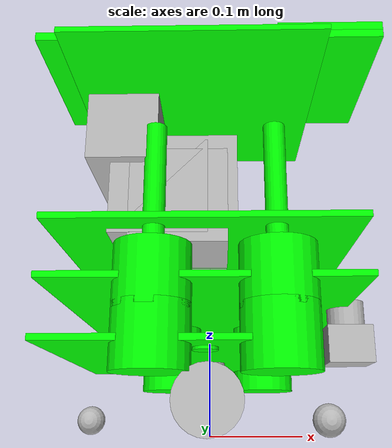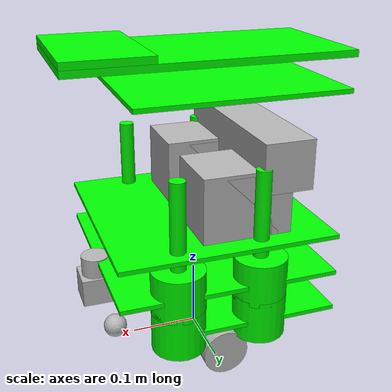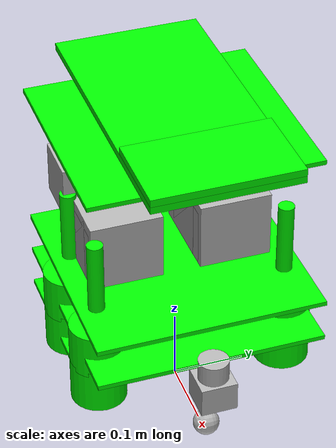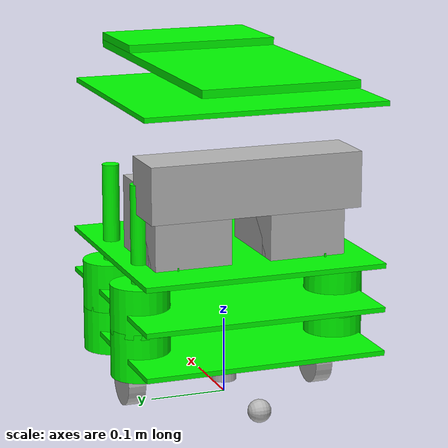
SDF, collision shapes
<?xml version="1.0" ?>
<sdf version="1.4">

<model name='turtlebot'>

      <link name='rack'>
        <inertial>
          <pose>0.001453 -0.000453 0.029787 0.000000 0.000000 0.000000</pose>
          <inertia>
            <ixx>0.058640</ixx>
            <ixy>0.000124</ixy>
            <ixz>0.000615</ixz>
            <iyy>0.058786</iyy>
            <iyz>0.000014</iyz>
            <izz>1.532440</izz>
          </inertia>
          <mass>2.234000</mass>
        </inertial>

        <collision name="tag1_collision">
          <pose>0 0 0.44 0 0 0</pose>
          <geometry>
            <box>
                <size>0.4 0.2 0.01</size>
            </box>
          </geometry>
        </collision>
        <visual name="tag1_visual">
          <pose>0 0 0.44 0 0 0</pose>
          <cast_shadows>true</cast_shadows>
          <geometry>
            <box>
                <size>0.4 0.2 0.01</size>
            </box>
          </geometry>
          <material>
            <diffuse>0 1 0 1</diffuse>
          </material>
        </visual>

        <collision name="tag2_collision">
          <pose>0.14 0 0.45 0 0 0</pose>
          <geometry>
            <box>
                <size>0.12 0.2 0.01</size>
            </box>
          </geometry>
        </collision>
        <visual name="tag2_visual">
          <pose>0.14 0 0.45 0 0 0</pose>
          <cast_shadows>true</cast_shadows>
          <geometry>
            <box>
                <size>0.12 0.2 0.01</size>
            </box>
          </geometry>
          <material>
            <diffuse>0 0 1 1</diffuse>
          </material>
        </visual>

        <collision name='plate_0_collision'>
          <pose>-0.043340 0.000000 0.084757 0.000000 0.000000 0.000000</pose>
          <geometry>
            <box>
              <size>0.233502 0.314845 0.006401</size>
            </box>
          </geometry>
          <max_contacts>10</max_contacts>
          <surface>
            <bounce/>
            <friction>
              <ode/>
            </friction>
            <contact>
              <ode/>
            </contact>
          </surface>
        </collision>
        <visual name='plate_0_visual'>
          <pose>-0.043340 0.000000 0.084757 0.000000 0.000000 0.000000</pose>
          <geometry>
            <mesh>
              <uri>model://turtlebotJde2cam/meshes/plate_0_logo.dae</uri>
            </mesh>
          </geometry>
        </visual>
        <collision name='plate_1_collision'>
          <pose>-0.002660 0.000000 0.141907 0.000000 0.000000 0.000000</pose>
          <geometry>
            <box>
              <size>0.314856 0.314856 0.006401</size>
            </box>
          </geometry>
          <max_contacts>10</max_contacts>
          <surface>
            <bounce/>
            <friction>
              <ode/>
            </friction>
            <contact>
              <ode/>
            </contact>
          </surface>
        </collision>
        <visual name='plate_1_visual'>
          <pose>-0.002660 0.000000 0.141907 0.000000 0.000000 0.000000</pose>
          <geometry>
            <mesh>
              <uri>model://turtlebotJde2cam/meshes/plate_1_logo.dae</uri>
            </mesh>
          </geometry>
        </visual>
        <collision name='plate_2_collision'>
          <pose>-0.002660 0.000000 0.199108 0.000000 0.000000 0.000000</pose>
          <geometry>
            <box>
              <size>0.314856 0.314856 0.006401</size>
            </box>
          </geometry>
          <max_contacts>10</max_contacts>
          <surface>
            <bounce/>
            <friction>
              <ode/>
            </friction>
            <contact>
              <ode/>
            </contact>
          </surface>
        </collision>
        <visual name='plate_2_visual'>
          <pose>-0.002660 0.000000 0.199108 0.000000 0.000000 0.000000</pose>
          <geometry>
            <mesh>
              <uri>model://turtlebotJde2cam/meshes/plate_1_logo.dae</uri>
            </mesh>
          </geometry>
        </visual>
        <collision name='plate_3_collision'>
          <pose>-0.015820 0.000000 0.405457 0.000000 0.000000 0.000000</pose>
          <geometry>
            <box>
              <size>0.288000 0.315000 0.006401</size>
            </box>
          </geometry>
          <max_contacts>10</max_contacts>
          <surface>
            <bounce/>
            <friction>
              <ode/>
            </friction>
            <contact>
              <ode/>
            </contact>
          </surface>
        </collision>
        <visual name='plate_3_visual'>
          <pose>-0.015820 0.000000 0.405457 0.000000 0.000000 0.000000</pose>
          <geometry>
            <mesh>
              <uri>model://turtlebotJde2cam/meshes/plate_2_logo.dae</uri>
            </mesh>
          </geometry>
        </visual>
        <collision name='spacer_0_collision'>
          <pose>-0.002540 0.111468 0.079992 0.000000 0.000000 0.000000</pose>
          <geometry>
            <cylinder>
              <radius>0.012700</radius>
              <length>0.003175</length>
            </cylinder>
          </geometry>
          <max_contacts>10</max_contacts>
          <surface>
            <bounce/>
            <friction>
              <ode/>
            </friction>
            <contact>
              <ode/>
            </contact>
          </surface>
        </collision>
        <visual name='spacer_0_visual'>
          <pose>-0.002540 0.111468 0.079992 0.000000 0.000000 0.000000</pose>
          <geometry>
            <mesh>
              <uri>model://turtlebotJde2cam/meshes/68-02403-125_Spacer.dae</uri>
            </mesh>
          </geometry>
        </visual>
        <collision name='spacer_1_collision'>
          <pose>-0.002540 -0.111468 0.079992 0.000000 0.000000 0.000000</pose>
          <geometry>
            <cylinder>
              <radius>0.012700</radius>
              <length>0.003175</length>
            </cylinder>
          </geometry>
          <max_contacts>10</max_contacts>
          <surface>
            <bounce/>
            <friction>
              <ode/>
            </friction>
            <contact>
              <ode/>
            </contact>
          </surface>
        </collision>
        <visual name='spacer_1_visual'>
          <pose>-0.002540 -0.111468 0.079992 0.000000 0.000000 0.000000</pose>
          <geometry>
            <mesh>
              <uri>model://turtlebotJde2cam/meshes/68-02403-125_Spacer.dae</uri>
            </mesh>
          </geometry>
        </visual>
        <collision name='spacer_2_collision'>
          <pose>-0.072390 -0.111468 0.079992 0.000000 0.000000 0.000000</pose>
          <geometry>
            <cylinder>
              <radius>0.012700</radius>
              <length>0.003175</length>
            </cylinder>
          </geometry>
          <max_contacts>10</max_contacts>
          <surface>
            <bounce/>
            <friction>
              <ode/>
            </friction>
            <contact>
              <ode/>
            </contact>
          </surface>
        </collision>
        <visual name='spacer_2_visual'>
          <pose>-0.072390 -0.111468 0.079992 0.000000 0.000000 0.000000</pose>
          <geometry>
            <mesh>
              <uri>model://turtlebotJde2cam/meshes/68-02403-125_Spacer.dae</uri>
            </mesh>
          </geometry>
        </visual>
        <collision name='spacer_3_collision'>
          <pose>-0.072390 0.111468 0.079992 0.000000 0.000000 0.000000</pose>
          <geometry>
            <cylinder>
              <radius>0.012700</radius>
              <length>0.003175</length>
            </cylinder>
          </geometry>
          <max_contacts>10</max_contacts>
          <surface>
            <bounce/>
            <friction>
              <ode/>
            </friction>
            <contact>
              <ode/>
            </contact>
          </surface>
        </collision>
        <visual name='spacer_3_visual'>
          <pose>-0.072390 0.111468 0.079992 0.000000 0.000000 0.000000</pose>
          <geometry>
            <mesh>
              <uri>model://turtlebotJde2cam/meshes/68-02403-125_Spacer.dae</uri>
            </mesh>
          </geometry>
        </visual>
        <collision name='standoff_2in_0_collision'>
          <pose>0.067640 0.131420 0.087980 0.000000 0.000000 0.000000</pose>
          <geometry>
            <cylinder>
              <radius>0.038100</radius>
              <length>0.063500</length>
            </cylinder>
          </geometry>
          <max_contacts>10</max_contacts>
          <surface>
            <bounce/>
            <friction>
              <ode/>
            </friction>
            <contact>
              <ode/>
            </contact>
          </surface>
        </collision>
        <visual name='standoff_2in_0_visual'>
          <pose>0.067640 0.131420 0.087980 0.000000 0.000000 0.000000</pose>
          <geometry>
            <mesh>
              <uri>model://turtlebotJde2cam/meshes/68-04552-2000-RA_Turtlebot_M-F_Standoff.dae</uri>
            </mesh>
          </geometry>
        </visual>
        <collision name='standoff_2in_1_collision'>
          <pose>0.067640 -0.131420 0.087980 0.000000 0.000000 0.000000</pose>
          <geometry>
            <cylinder>
              <radius>0.038100</radius>
              <length>0.063500</length>
            </cylinder>
          </geometry>
          <max_contacts>10</max_contacts>
          <surface>
            <bounce/>
            <friction>
              <ode/>
            </friction>
            <contact>
              <ode/>
            </contact>
          </surface>
        </collision>
        <visual name='standoff_2in_1_visual'>
          <pose>0.067640 -0.131420 0.087980 0.000000 0.000000 0.000000</pose>
          <geometry>
            <mesh>
              <uri>model://turtlebotJde2cam/meshes/68-04552-2000-RA_Turtlebot_M-F_Standoff.dae</uri>
            </mesh>
          </geometry>
        </visual>
        <collision name='standoff_2in_2_collision'>
          <pose>-0.052832 -0.131420 0.087980 0.000000 0.000000 0.000000</pose>
          <geometry>
            <cylinder>
              <radius>0.038100</radius>
              <length>0.063500</length>
            </cylinder>
          </geometry>
          <max_contacts>10</max_contacts>
          <surface>
            <bounce/>
            <friction>
              <ode/>
            </friction>
            <contact>
              <ode/>
            </contact>
          </surface>
        </collision>
        <visual name='standoff_2in_2_visual'>
          <pose>-0.052832 -0.131420 0.087980 0.000000 0.000000 0.000000</pose>
          <geometry>
            <mesh>
              <uri>model://turtlebotJde2cam/meshes/68-04552-2000-RA_Turtlebot_M-F_Standoff.dae</uri>
            </mesh>
          </geometry>
        </visual>
        <collision name='standoff_2in_3_collision'>
          <pose>-0.052832 0.131420 0.087980 0.000000 0.000000 0.000000</pose>
          <geometry>
            <cylinder>
              <radius>0.038100</radius>
              <length>0.063500</length>
            </cylinder>
          </geometry>
          <max_contacts>10</max_contacts>
          <surface>
            <bounce/>
            <friction>
              <ode/>
            </friction>
            <contact>
              <ode/>
            </contact>
          </surface>
        </collision>
        <visual name='standoff_2in_3_visual'>
          <pose>-0.052832 0.131420 0.087980 0.000000 0.000000 0.000000</pose>
          <geometry>
            <mesh>
              <uri>model://turtlebotJde2cam/meshes/68-04552-2000-RA_Turtlebot_M-F_Standoff.dae</uri>
            </mesh>
          </geometry>
        </visual>
        <collision name='standoff_2in_4_collision'>
          <pose>0.067640 0.131420 0.145130 0.000000 0.000000 0.000000</pose>
          <geometry>
            <cylinder>
              <radius>0.038100</radius>
              <length>0.063500</length>
            </cylinder>
          </geometry>
          <max_contacts>10</max_contacts>
          <surface>
            <bounce/>
            <friction>
              <ode/>
            </friction>
            <contact>
              <ode/>
            </contact>
          </surface>
        </collision>
        <visual name='standoff_2in_4_visual'>
          <pose>0.067640 0.131420 0.145130 0.000000 0.000000 0.000000</pose>
          <geometry>
            <mesh>
              <uri>model://turtlebotJde2cam/meshes/68-04552-2000-RA_Turtlebot_M-F_Standoff.dae</uri>
            </mesh>
          </geometry>
        </visual>
        <collision name='standoff_2in_5_collision'>
          <pose>0.067640 -0.131420 0.145130 0.000000 0.000000 0.000000</pose>
          <geometry>
            <cylinder>
              <radius>0.038100</radius>
              <length>0.063500</length>
            </cylinder>
          </geometry>
          <max_contacts>10</max_contacts>
          <surface>
            <bounce/>
            <friction>
              <ode/>
            </friction>
            <contact>
              <ode/>
            </contact>
          </surface>
        </collision>
        <visual name='standoff_2in_5_visual'>
          <pose>0.067640 -0.131420 0.145130 0.000000 0.000000 0.000000</pose>
          <geometry>
            <mesh>
              <uri>model://turtlebotJde2cam/meshes/68-04552-2000-RA_Turtlebot_M-F_Standoff.dae</uri>
            </mesh>
          </geometry>
        </visual>
        <collision name='standoff_2in_6_collision'>
          <pose>-0.052832 -0.131420 0.145130 0.000000 0.000000 0.000000</pose>
          <geometry>
            <cylinder>
              <radius>0.038100</radius>
              <length>0.063500</length>
            </cylinder>
          </geometry>
          <max_contacts>10</max_contacts>
          <surface>
            <bounce/>
            <friction>
              <ode/>
            </friction>
            <contact>
              <ode/>
            </contact>
          </surface>
        </collision>
        <visual name='standoff_2in_6_visual'>
          <pose>-0.052832 -0.131420 0.145130 0.000000 0.000000 0.000000</pose>
          <geometry>
            <mesh>
              <uri>model://turtlebotJde2cam/meshes/68-04552-2000-RA_Turtlebot_M-F_Standoff.dae</uri>
            </mesh>
          </geometry>
        </visual>
        <collision name='standoff_2in_7_collision'>
          <pose>-0.052832 0.131420 0.145130 0.000000 0.000000 0.000000</pose>
          <geometry>
            <cylinder>
              <radius>0.038100</radius>
              <length>0.063500</length>
            </cylinder>
          </geometry>
          <max_contacts>10</max_contacts>
          <surface>
            <bounce/>
            <friction>
              <ode/>
            </friction>
            <contact>
              <ode/>
            </contact>
          </surface>
        </collision>
        <visual name='standoff_2in_7_visual'>
          <pose>-0.052832 0.131420 0.145130 0.000000 0.000000 0.000000</pose>
          <geometry>
            <mesh>
              <uri>model://turtlebotJde2cam/meshes/68-04552-2000-RA_Turtlebot_M-F_Standoff.dae</uri>
            </mesh>
          </geometry>
        </visual>
        <collision name='standoff_8in_0_collision'>
          <pose>0.067640 0.131420 0.202280 0.000000 0.000000 0.000000</pose>
          <geometry>
            <cylinder>
              <radius>0.011113</radius>
              <length>0.203200</length>
            </cylinder>
          </geometry>
          <max_contacts>10</max_contacts>
          <surface>
            <bounce/>
            <friction>
              <ode/>
            </friction>
            <contact>
              <ode/>
            </contact>
          </surface>
        </collision>
        <visual name='standoff_8in_0_visual'>
          <pose>0.067640 0.131420 0.202280 0.000000 0.000000 0.000000</pose>
          <geometry>
            <mesh>
              <uri>model://turtlebotJde2cam/meshes/68-02421-8000-RA_Turtlebot_F-F_Standoff.dae</uri>
            </mesh>
          </geometry>
        </visual>
        <collision name='standoff_8in_1_collision'>
          <pose>0.067640 -0.131420 0.202280 0.000000 0.000000 0.000000</pose>
          <geometry>
            <cylinder>
              <radius>0.011113</radius>
              <length>0.203200</length>
            </cylinder>
          </geometry>
          <max_contacts>10</max_contacts>
          <surface>
            <bounce/>
            <friction>
              <ode/>
            </friction>
            <contact>
              <ode/>
            </contact>
          </surface>
        </collision>
        <visual name='standoff_8in_1_visual'>
          <pose>0.067640 -0.131420 0.202280 0.000000 0.000000 0.000000</pose>
          <geometry>
            <mesh>
              <uri>model://turtlebotJde2cam/meshes/68-02421-8000-RA_Turtlebot_F-F_Standoff.dae</uri>
            </mesh>
          </geometry>
        </visual>
        <collision name='standoff_8in_2_collision'>
          <pose>-0.052832 -0.131420 0.202280 0.000000 0.000000 0.000000</pose>
          <geometry>
            <cylinder>
              <radius>0.011113</radius>
              <length>0.203200</length>
            </cylinder>
          </geometry>
          <max_contacts>10</max_contacts>
          <surface>
            <bounce/>
            <friction>
              <ode/>
            </friction>
            <contact>
              <ode/>
            </contact>
          </surface>
        </collision>
        <visual name='standoff_8in_2_visual'>
          <pose>-0.052832 -0.131420 0.202280 0.000000 0.000000 0.000000</pose>
          <geometry>
            <mesh>
              <uri>model://turtlebotJde2cam/meshes/68-02421-8000-RA_Turtlebot_F-F_Standoff.dae</uri>
            </mesh>
          </geometry>
        </visual>
        <collision name='standoff_8in_3_collision'>
          <pose>-0.052832 0.131420 0.202280 0.000000 0.000000 0.000000</pose>
          <geometry>
            <cylinder>
              <radius>0.011113</radius>
              <length>0.203200</length>
            </cylinder>
          </geometry>
          <max_contacts>10</max_contacts>
          <surface>
            <bounce/>
            <friction>
              <ode/>
            </friction>
            <contact>
              <ode/>
            </contact>
          </surface>
        </collision>
        <visual name='standoff_8in_3_visual'>
          <pose>-0.052832 0.131420 0.202280 0.000000 0.000000 0.000000</pose>
          <geometry>
            <mesh>
              <uri>model://turtlebotJde2cam/meshes/68-02421-8000-RA_Turtlebot_F-F_Standoff.dae</uri>
            </mesh>
          </geometry>
        </visual>
        <collision name='standoff_kinect_0_collision'>
          <pose>-0.105098 0.098000 0.202308 0.000000 0.000000 0.000000</pose>
          <geometry>
            <cylinder>
              <radius>0.001111</radius>
              <length>0.008585</length>
            </cylinder>
          </geometry>
          <max_contacts>10</max_contacts>
          <surface>
            <bounce/>
            <friction>
              <ode/>
            </friction>
            <contact>
              <ode/>
            </contact>
          </surface>
        </collision>
        <visual name='standoff_kinect_0_visual'>
          <pose>-0.105098 0.098000 0.202308 0.000000 0.000000 0.000000</pose>
          <geometry>
            <mesh>
              <uri>model://turtlebotJde2cam/meshes/68-04556-RA_Kinect_Standoff_Assy.dae</uri>
            </mesh>
          </geometry>
        </visual>
        <collision name='standoff_kinect_1_collision'>
          <pose>-0.105098 -0.098000 0.202308 0.000000 0.000000 0.000000</pose>
          <geometry>
            <cylinder>
              <radius>0.001111</radius>
              <length>0.008585</length>
            </cylinder>
          </geometry>
          <max_contacts>10</max_contacts>
          <surface>
            <bounce/>
            <friction>
              <ode/>
            </friction>
            <contact>
              <ode/>
            </contact>
          </surface>
        </collision>
        <visual name='standoff_kinect_1_visual'>
          <pose>-0.105098 -0.098000 0.202308 0.000000 0.000000 0.000000</pose>
          <geometry>
            <mesh>
              <uri>model://turtlebotJde2cam/meshes/68-04556-RA_Kinect_Standoff_Assy.dae</uri>
            </mesh>
          </geometry>
        </visual>
        <velocity_decay>
          <linear>0.000000</linear>
          <angular>0.000000</angular>
        </velocity_decay>
        <self_collide>0</self_collide>
        <kinematic>0</kinematic>
        <gravity>1</gravity>
      </link>
      <link name='laser'>
        <pose>0.155000 0.000000 0.112000 0.000000 0.000000 0.000000</pose>
        <gravity>0</gravity>
        <inertial>
          <mass>0.100000</mass>
          <inertia>
            <ixx>1.000000</ixx>
            <ixy>0.000000</ixy>
            <ixz>0.000000</ixz>
            <iyy>1.000000</iyy>
            <iyz>0.000000</iyz>
            <izz>1.000000</izz>
          </inertia>
        </inertial>
        <visual name='visual'>
          <geometry>
            <mesh>
              <uri>model://hokuyo/meshes/hokuyo.dae</uri>
            </mesh>
          </geometry>
        </visual>
        <collision name='collision-base'>
          <pose>0.000000 0.000000 -0.014500 0.000000 0.000000 0.000000</pose>
          <geometry>
            <box>
              <size>0.050000 0.050000 0.041000</size>
            </box>
          </geometry>
          <max_contacts>10</max_contacts>
          <surface>
            <bounce/>
            <friction>
              <ode/>
            </friction>
            <contact>
              <ode/>
            </contact>
          </surface>
        </collision>
        <collision name='collision-top'>
          <pose>0.000000 0.000000 0.020500 0.000000 0.000000 0.000000</pose>
          <geometry>
            <cylinder>
              <radius>0.021000</radius>
              <length>0.029000</length>
            </cylinder>
          </geometry>
          <max_contacts>10</max_contacts>
          <surface>
            <bounce/>
            <friction>
              <ode/>
            </friction>
            <contact>
              <ode/>
            </contact>
          </surface>
        </collision>
        <sensor name='laser' type='ray'>
          <ray>
            <scan>
              <horizontal>
                <samples>180</samples>
                <resolution>1.000000</resolution>
                <min_angle>-1.570000</min_angle>
                <max_angle>1.570000</max_angle>
              </horizontal>
            </scan>
            <range>
              <min>0.080000</min>
              <max>10.000000</max>
              <resolution>0.010000</resolution>
            </range>
          </ray>
          <update_rate>20.000000</update_rate>
          <plugin name='laser' filename='liblaserTurtlebotJde.so'/>
          <always_on>1</always_on>
          <visualize>1</visualize>
        </sensor>
        <velocity_decay>
          <linear>0.000000</linear>
          <angular>0.000000</angular>
        </velocity_decay>
        <self_collide>0</self_collide>
        <kinematic>0</kinematic>
      </link>
      <link name='camera_bottom_body_left'>
        <pose>-0.030000 0.076000 0.232400 -1.570000 0.000000 0.000000</pose>
        <inertial>
          <mass>0.500000</mass>
          <inertia>
            <ixx>1.000000</ixx>
            <ixy>0.000000</ixy>
            <ixz>0.000000</ixz>
            <iyy>1.000000</iyy>
            <iyz>0.000000</iyz>
            <izz>1.000000</izz>
          </inertia>
        </inertial>
        <visual name='visual'>
          <geometry>
            <mesh>
              <uri>model://turtlebotJde2cam/meshes/sonyvid30/sonyvid30_bottom.dae</uri>
              <scale>4.000000 3.000000 3.000000</scale>
            </mesh>
          </geometry>
        </visual>
        <collision name='collision'>
          <geometry>
            <box>
              <size>0.100000 0.100000 0.100000</size>
            </box>
          </geometry>
          <surface>
            <friction>
              <ode>
                <mu>100000.000000</mu>
                <mu2>100000.000000</mu2>
                <slip1>0.000000</slip1>
                <slip2>0.000000</slip2>
              </ode>
            </friction>
            <bounce/>
            <contact>
              <ode/>
            </contact>
          </surface>
          <max_contacts>10</max_contacts>
        </collision>
        <velocity_decay>
          <linear>0.000000</linear>
          <angular>0.000000</angular>
        </velocity_decay>
        <self_collide>0</self_collide>
        <kinematic>0</kinematic>
        <gravity>1</gravity>
      </link>
      <link name='camera_column_body_left'>
        <pose>-0.020000 0.076000 0.247400 -1.570000 0.000000 0.000000</pose>
        <inertial>
          <mass>0.500000</mass>
          <inertia>
            <ixx>1.000000</ixx>
            <ixy>0.000000</ixy>
            <ixz>0.000000</ixz>
            <iyy>1.000000</iyy>
            <iyz>0.000000</iyz>
            <izz>1.000000</izz>
          </inertia>
        </inertial>
        <visual name='visual'>
          <geometry>
            <mesh>
              <uri>model://turtlebotJde2cam/meshes/sonyvid30/sonyvid30_mid.dae</uri>
              <scale>0.600000 1.000000 1.000000</scale>
            </mesh>
          </geometry>
        </visual>
        <collision name='collision'>
          <geometry>
            <box>
              <size>0.100000 0.100000 0.100000</size>
            </box>
          </geometry>
          <surface>
            <friction>
              <ode>
                <mu>100000.000000</mu>
                <mu2>100000.000000</mu2>
                <slip1>0.000000</slip1>
                <slip2>0.000000</slip2>
              </ode>
            </friction>
            <bounce/>
            <contact>
              <ode/>
            </contact>
          </surface>
          <max_contacts>10</max_contacts>
        </collision>
        <velocity_decay>
          <linear>0.000000</linear>
          <angular>0.000000</angular>
        </velocity_decay>
        <self_collide>0</self_collide>
        <kinematic>0</kinematic>
        <gravity>1</gravity>
      </link>
      <link name='camera_top_body_left'>
        <pose>-0.050000 0.076000 0.242400 -1.570000 -0.000000 3.140000</pose>
        <inertial>
          <mass>0.500000</mass>
          <inertia>
            <ixx>1.000000</ixx>
            <ixy>0.000000</ixy>
            <ixz>0.000000</ixz>
            <iyy>1.000000</iyy>
            <iyz>0.000000</iyz>
            <izz>1.000000</izz>
          </inertia>
        </inertial>
        <sensor name='cam_turtlebot_left' type='camera'>
          <pose>0.000000 0.000000 0.000000 -1.570000 -0.000000 3.140000</pose>
          <update_rate>20.000000</update_rate>
          <camera name='__default__'>
            <horizontal_fov>1.570000</horizontal_fov>
            <image>
              <width>640</width>
              <height>480</height>
              <format>R8G8B8</format>
            </image>
            <clip>
              <near>0.300000</near>
              <far>15.000000</far>
            </clip>
          </camera>
          <plugin name='camera_dump' filename='libcamera_dumpTurtlebotJde.so'/>
        </sensor>
        <visual name='visual'>
          <geometry>
            <mesh>
              <uri>model://turtlebotJde2cam/meshes/sonyvid30/sonyvid30_top.dae</uri>
              <scale>2.000000 2.000000 1.300000</scale>
            </mesh>
          </geometry>
        </visual>
        <collision name='collision'>
          <geometry>
            <box>
              <size>0.100000 0.100000 0.100000</size>
            </box>
          </geometry>
          <surface>
            <friction>
              <ode>
                <mu>100000.000000</mu>
                <mu2>100000.000000</mu2>
                <slip1>0.000000</slip1>
                <slip2>0.000000</slip2>
              </ode>
            </friction>
            <bounce/>
            <contact>
              <ode/>
            </contact>
          </surface>
          <max_contacts>10</max_contacts>
        </collision>
        <velocity_decay>
          <linear>0.000000</linear>
          <angular>0.000000</angular>
        </velocity_decay>
        <self_collide>0</self_collide>
        <kinematic>0</kinematic>
        <gravity>1</gravity>
      </link>
      <link name='camera_bottom_body_right'>
        <pose>-0.030000 -0.076000 0.232400 -1.570000 0.000000 0.000000</pose>
        <inertial>
          <mass>0.500000</mass>
          <inertia>
            <ixx>1.000000</ixx>
            <ixy>0.000000</ixy>
            <ixz>0.000000</ixz>
            <iyy>1.000000</iyy>
            <iyz>0.000000</iyz>
            <izz>1.000000</izz>
          </inertia>
        </inertial>
        <visual name='visual'>
          <geometry>
            <mesh>
              <uri>model://turtlebotJde2cam/meshes/sonyvid30/sonyvid30_bottom.dae</uri>
              <scale>4.000000 3.000000 3.000000</scale>
            </mesh>
          </geometry>
        </visual>
        <collision name='collision'>
          <geometry>
            <box>
              <size>0.100000 0.100000 0.100000</size>
            </box>
          </geometry>
          <surface>
            <friction>
              <ode>
                <mu>100000.000000</mu>
                <mu2>100000.000000</mu2>
                <slip1>0.000000</slip1>
                <slip2>0.000000</slip2>
              </ode>
            </friction>
            <bounce/>
            <contact>
              <ode/>
            </contact>
          </surface>
          <max_contacts>10</max_contacts>
        </collision>
        <velocity_decay>
          <linear>0.000000</linear>
          <angular>0.000000</angular>
        </velocity_decay>
        <self_collide>0</self_collide>
        <kinematic>0</kinematic>
        <gravity>1</gravity>
      </link>
      <link name='camera_column_body_right'>
        <pose>-0.020000 -0.076000 0.247400 -1.570000 0.000000 0.000000</pose>
        <inertial>
          <mass>0.500000</mass>
          <inertia>
            <ixx>1.000000</ixx>
            <ixy>0.000000</ixy>
            <ixz>0.000000</ixz>
            <iyy>1.000000</iyy>
            <iyz>0.000000</iyz>
            <izz>1.000000</izz>
          </inertia>
        </inertial>
        <visual name='visual'>
          <geometry>
            <mesh>
              <uri>model://turtlebotJde2cam/meshes/sonyvid30/sonyvid30_mid.dae</uri>
              <scale>0.600000 1.000000 1.000000</scale>
            </mesh>
          </geometry>
        </visual>
        <collision name='collision'>
          <geometry>
            <box>
              <size>0.100000 0.100000 0.100000</size>
            </box>
          </geometry>
          <surface>
            <friction>
              <ode>
                <mu>100000.000000</mu>
                <mu2>100000.000000</mu2>
                <slip1>0.000000</slip1>
                <slip2>0.000000</slip2>
              </ode>
            </friction>
            <bounce/>
            <contact>
              <ode/>
            </contact>
          </surface>
          <max_contacts>10</max_contacts>
        </collision>
        <velocity_decay>
          <linear>0.000000</linear>
          <angular>0.000000</angular>
        </velocity_decay>
        <self_collide>0</self_collide>
        <kinematic>0</kinematic>
        <gravity>1</gravity>
      </link>
      <link name='camera_top_body_right'>
        <pose>-0.050000 -0.076000 0.242400 -1.570000 -0.000000 3.140000</pose>
        <inertial>
          <mass>0.500000</mass>
          <inertia>
            <ixx>1.000000</ixx>
            <ixy>0.000000</ixy>
            <ixz>0.000000</ixz>
            <iyy>1.000000</iyy>
            <iyz>0.000000</iyz>
            <izz>1.000000</izz>
          </inertia>
        </inertial>
        <sensor name='cam_turtlebot_right' type='camera'>
          <pose>0.000000 0.000000 0.000000 -1.570000 -0.000000 3.140000</pose>
          <update_rate>20.000000</update_rate>
          <camera name='__default__'>
            <horizontal_fov>1.570000</horizontal_fov>
            <image>
              <width>640</width>
              <height>480</height>
              <format>R8G8B8</format>
            </image>
            <clip>
              <near>0.300000</near>
              <far>15.000000</far>
            </clip>
          </camera>
          <plugin name='camera_dump' filename='libcamera_dumpTurtlebotJde.so'/>
        </sensor>
        <visual name='visual'>
          <geometry>
            <mesh>
              <uri>model://turtlebotJde2cam/meshes/sonyvid30/sonyvid30_top.dae</uri>
              <scale>2.000000 2.000000 1.300000</scale>
            </mesh>
          </geometry>
        </visual>
        <collision name='collision'>
          <geometry>
            <box>
              <size>0.100000 0.100000 0.100000</size>
            </box>
          </geometry>
          <surface>
            <friction>
              <ode>
                <mu>100000.000000</mu>
                <mu2>100000.000000</mu2>
                <slip1>0.000000</slip1>
                <slip2>0.000000</slip2>
              </ode>
            </friction>
            <bounce/>
            <contact>
              <ode/>
            </contact>
          </surface>
          <max_contacts>10</max_contacts>
        </collision>
        <velocity_decay>
          <linear>0.000000</linear>
          <angular>0.000000</angular>
        </velocity_decay>
        <self_collide>0</self_collide>
        <kinematic>0</kinematic>
        <gravity>1</gravity>
      </link>
      <link name='create::base'>
        <inertial>
          <pose>0.001453 -0.000453 0.029787 0.000000 0.000000 0.000000</pose>
          <inertia>
            <ixx>0.058640</ixx>
            <ixy>0.000124</ixy>
            <ixz>0.000615</ixz>
            <iyy>0.058786</iyy>
            <iyz>0.000014</iyz>
            <izz>1.532440</izz>
          </inertia>
          <mass>2.234000</mass>
        </inertial>
        <collision name='base_collision'>
          <pose>0.000000 0.000000 0.047800 0.000000 0.000000 0.000000</pose>
          <geometry>
            <cylinder>
              <radius>0.016495</radius>
              <length>0.061163</length>
            </cylinder>
          </geometry>
          <max_contacts>10</max_contacts>
          <surface>
            <bounce/>
            <friction>
              <ode/>
            </friction>
            <contact>
              <ode/>
            </contact>
          </surface>
        </collision>
        <collision name='front_wheel_collision'>
          <pose>0.130000 0.000000 0.017000 -0.000000 1.570700 1.570700</pose>
          <geometry>
            <sphere>
              <radius>0.018000</radius>
            </sphere>
          </geometry>
          <surface>
            <friction>
              <ode>
                <mu>0.000000</mu>
                <mu2>0.000000</mu2>
                <fdir1>0.000000 0.000000 0.000000</fdir1>
                <slip1>0.000000</slip1>
                <slip2>0.000000</slip2>
              </ode>
            </friction>
            <bounce/>
            <contact>
              <ode/>
            </contact>
          </surface>
          <max_contacts>10</max_contacts>
        </collision>
        <visual name='front_wheel_visual'>
          <pose>0.130000 0.000000 0.017000 -0.000000 1.570700 1.570700</pose>
          <geometry>
            <sphere>
              <radius>0.009000</radius>
            </sphere>
          </geometry>
        </visual>
        <collision name='rear_wheel_collision'>
          <pose>-0.130000 0.000000 0.017000 -0.000000 1.570700 1.570700</pose>
          <geometry>
            <sphere>
              <radius>0.015000</radius>
            </sphere>
          </geometry>
          <surface>
            <friction>
              <ode>
                <mu>0.000000</mu>
                <mu2>0.000000</mu2>
                <fdir1>0.000000 0.000000 0.000000</fdir1>
                <slip1>0.000000</slip1>
                <slip2>0.000000</slip2>
              </ode>
            </friction>
            <bounce/>
            <contact>
              <ode/>
            </contact>
          </surface>
          <max_contacts>10</max_contacts>
        </collision>
        <visual name='rear_wheel_visual'>
          <pose>-0.130000 0.000000 0.017000 -0.000000 1.570700 1.570700</pose>
          <geometry>
            <sphere>
              <radius>0.007500</radius>
            </sphere>
          </geometry>
        </visual>
        <sensor name='left_cliff_sensor' type='ray'>
          <pose>0.070000 0.140000 0.027000 0.000000 1.570790 0.000000</pose>
          <ray>
            <scan>
              <horizontal>
                <samples>1</samples>
                <resolution>1.000000</resolution>
                <min_angle>0.000000</min_angle>
                <max_angle>0.000000</max_angle>
              </horizontal>
            </scan>
            <range>
              <min>0.010000</min>
              <max>0.040000</max>
              <resolution>0.100000</resolution>
            </range>
          </ray>
        </sensor>
        <sensor name='leftfront_cliff_sensor' type='ray'>
          <pose>0.150000 0.040000 0.027000 0.000000 1.570790 0.000000</pose>
          <ray>
            <scan>
              <horizontal>
                <samples>1</samples>
                <resolution>1.000000</resolution>
                <min_angle>0.000000</min_angle>
                <max_angle>0.000000</max_angle>
              </horizontal>
            </scan>
            <range>
              <min>0.010000</min>
              <max>0.040000</max>
              <resolution>0.100000</resolution>
            </range>
          </ray>
        </sensor>
        <sensor name='right_cliff_sensor' type='ray'>
          <pose>0.070000 -0.140000 0.027000 0.000000 1.570790 0.000000</pose>
          <ray>
            <scan>
              <horizontal>
                <samples>1</samples>
                <resolution>1.000000</resolution>
                <min_angle>0.000000</min_angle>
                <max_angle>0.000000</max_angle>
              </horizontal>
            </scan>
            <range>
              <min>0.010000</min>
              <max>0.040000</max>
              <resolution>0.100000</resolution>
            </range>
          </ray>
        </sensor>
        <sensor name='rightfront_cliff_sensor' type='ray'>
          <pose>0.150000 -0.040000 0.027000 0.000000 1.570790 0.000000</pose>
          <ray>
            <scan>
              <horizontal>
                <samples>1</samples>
                <resolution>1.000000</resolution>
                <min_angle>0.000000</min_angle>
                <max_angle>0.000000</max_angle>
              </horizontal>
            </scan>
            <range>
              <min>0.010000</min>
              <max>0.040000</max>
              <resolution>0.100000</resolution>
            </range>
          </ray>
        </sensor>
        <sensor name='wall_sensor' type='ray'>
          <pose>0.090000 -0.120000 0.059000 0.000000 0.000000 -1.000000</pose>
          <ray>
            <scan>
              <horizontal>
                <samples>1</samples>
                <resolution>1.000000</resolution>
                <min_angle>0.000000</min_angle>
                <max_angle>0.000000</max_angle>
              </horizontal>
            </scan>
            <range>
              <min>0.016000</min>
              <max>0.040000</max>
              <resolution>0.100000</resolution>
            </range>
          </ray>
        </sensor>
        <velocity_decay>
          <linear>0.000000</linear>
          <angular>0.000000</angular>
        </velocity_decay>
        <pose>0.000000 0.000000 0.000000 0.000000 0.000000 0.000000</pose>
        <self_collide>0</self_collide>
        <kinematic>0</kinematic>
        <gravity>1</gravity>
      </link>
      <link name='create::left_wheel'>
        <pose>0.000000 0.130000 0.032000 0.000000 0.000000 0.000000</pose>
        <inertial>
          <inertia>
            <ixx>0.001000</ixx>
            <ixy>0.000000</ixy>
            <ixz>0.000000</ixz>
            <iyy>0.001000</iyy>
            <iyz>0.000000</iyz>
            <izz>0.001000</izz>
          </inertia>
          <mass>0.010000</mass>
        </inertial>
        <collision name='collision'>
          <pose>0.000000 0.000000 0.000000 -0.000000 1.570700 1.570700</pose>
          <geometry>
            <cylinder>
              <radius>0.033000</radius>
              <length>0.023000</length>
            </cylinder>
          </geometry>
          <surface>
            <friction>
              <ode>
                <mu>10.000000</mu>
                <mu2>10.000000</mu2>
                <fdir1>0.000000 0.000000 0.000000</fdir1>
                <slip1>0.000000</slip1>
                <slip2>0.000000</slip2>
              </ode>
            </friction>
            <bounce/>
            <contact>
              <ode/>
            </contact>
          </surface>
          <max_contacts>10</max_contacts>
        </collision>
        <visual name='visual'>
          <pose>0.000000 0.000000 0.000000 -0.000000 1.570700 1.570700</pose>
          <geometry>
            <cylinder>
              <radius>0.033000</radius>
              <length>0.023000</length>
            </cylinder>
          </geometry>
        </visual>
        <velocity_decay>
          <linear>0.000000</linear>
          <angular>0.000000</angular>
        </velocity_decay>
        <self_collide>0</self_collide>
        <kinematic>0</kinematic>
        <gravity>1</gravity>
      </link>
      <link name='create::right_wheel'>
        <pose>0.000000 -0.130000 0.032000 0.000000 0.000000 0.000000</pose>
        <inertial>
          <inertia>
            <ixx>0.001000</ixx>
            <ixy>0.000000</ixy>
            <ixz>0.000000</ixz>
            <iyy>0.001000</iyy>
            <iyz>0.000000</iyz>
            <izz>0.001000</izz>
          </inertia>
          <mass>0.010000</mass>
        </inertial>
        <collision name='collision'>
          <pose>0.000000 0.000000 0.000000 -0.000000 1.570700 1.570700</pose>
          <geometry>
            <cylinder>
              <radius>0.033000</radius>
              <length>0.023000</length>
            </cylinder>
          </geometry>
          <surface>
            <friction>
              <ode>
                <mu>10.000000</mu>
                <mu2>10.000000</mu2>
                <fdir1>0.000000 0.000000 0.000000</fdir1>
                <slip1>0.000000</slip1>
                <slip2>0.000000</slip2>
              </ode>
            </friction>
            <bounce/>
            <contact>
              <ode/>
            </contact>
          </surface>
          <max_contacts>10</max_contacts>
        </collision>
        <visual name='visual'>
          <pose>0.000000 0.000000 0.000000 -0.000000 1.570700 1.570700</pose>
          <geometry>
            <cylinder>
              <radius>0.033000</radius>
              <length>0.023000</length>
            </cylinder>
          </geometry>
        </visual>
        <velocity_decay>
          <linear>0.000000</linear>
          <angular>0.000000</angular>
        </velocity_decay>
        <self_collide>0</self_collide>
        <kinematic>0</kinematic>
        <gravity>1</gravity>
      </link>
      <joint name='create::left_wheel_hinge' type='revolute'>
        <parent>create::base</parent>
        <child>create::left_wheel</child>
        <axis>
          <xyz>0.000000 1.000000 0.000000</xyz>
          <limit>
            <lower>-10000000000000000.000000</lower>
            <upper>10000000000000000.000000</upper>
          </limit>
        </axis>
      </joint>
      <joint name='create::right_wheel_hinge' type='revolute'>
        <parent>create::base</parent>
        <child>create::right_wheel</child>
        <axis>
          <xyz>0.000000 1.000000 0.000000</xyz>
          <limit>
            <lower>-10000000000000000.000000</lower>
            <upper>10000000000000000.000000</upper>
          </limit>
        </axis>
      </joint>
      <plugin name='motors' filename='libmotorsTurtlebotJde.so'>
        <left_joint>create::left_wheel_hinge</left_joint>
        <right_joint>create::right_wheel_hinge</right_joint>
        <torque>5</torque>
      </plugin>
      <plugin name='encoders' filename='libencodersTurtlebotJde.so'/>
      <link name='kinect_model::kinect'>
        <inertial>
          <mass>0.300000</mass>
          <inertia>
            <ixx>1.000000</ixx>
            <ixy>0.000000</ixy>
            <ixz>0.000000</ixz>
            <iyy>1.000000</iyy>
            <iyz>0.000000</iyz>
            <izz>1.000000</izz>
          </inertia>
        </inertial>
        <collision name='collision'>
          <geometry>
            <box>
              <size>0.073000 0.276000 0.072000</size>
            </box>
          </geometry>
          <max_contacts>10</max_contacts>
          <surface>
            <bounce/>
            <friction>
              <ode/>
            </friction>
            <contact>
              <ode/>
            </contact>
          </surface>
        </collision>
        <visual name='visual'>
          <geometry>
            <mesh>
              <uri>model://kinect/meshes/kinect.dae</uri>
            </mesh>
          </geometry>
        </visual>
        <sensor name='kinect_model::kinect' type='depth'>
          <update_rate>5.000000</update_rate>
          <camera name='__default__'>
            <horizontal_fov>1.047198</horizontal_fov>
            <image>
              <width>640</width>
              <height>480</height>
              <format>R8G8B8</format>
            </image>
            <clip>
              <near>0.050000</near>
              <far>3.000000</far>
            </clip>
          </camera>
          <plugin name='depth_camera_plugin' filename='libkinectPluginTurtlebotJde.so'/>
        </sensor>
        <velocity_decay>
          <linear>0.000000</linear>
          <angular>0.000000</angular>
        </velocity_decay>
        <pose>-0.087098 0.000000 0.303857 0.000000 0.000000 0.000000</pose>
        <self_collide>0</self_collide>
        <kinematic>0</kinematic>
        <gravity>1</gravity>
      </link>
      <joint name='create_rack' type='revolute'>
        <parent>create::base</parent>
        <child>rack</child>
        <axis>
          <xyz>0.000000 0.000000 1.000000</xyz>
          <limit>
            <lower>0.000000</lower>
            <upper>0.000000</upper>
          </limit>
        </axis>
      </joint>
      <joint name='kinect_rack' type='revolute'>
        <parent>kinect_model::kinect</parent>
        <child>rack</child>
        <axis>
          <xyz>0.000000 0.000000 1.000000</xyz>
          <limit>
            <lower>0.000000</lower>
            <upper>0.000000</upper>
          </limit>
        </axis>
      </joint>
      <joint name='joint_laser' type='revolute'>
        <parent>rack</parent>
        <child>laser</child>
        <axis>
          <xyz>0.000000 0.000000 0.000000</xyz>
          <limit>
            <lower>0.000000</lower>
            <upper>0.000000</upper>
          </limit>
        </axis>
      </joint>
      <joint name='pan_joint_left' type='revolute'>
        <pose>0.000000 0.000000 0.000000 0.000000 0.000000 0.000000</pose>
        <child>camera_bottom_body_left</child>
        <parent>camera_column_body_left</parent>
        <axis>
          <xyz>0.000000 1.000000 0.000000</xyz>
          <limit>
            <lower>0.000000</lower>
            <upper>0.000000</upper>
          </limit>
        </axis>
      </joint>
      <joint name='tilt_joint_left' type='revolute'>
        <pose>0.000000 0.000000 0.000000 0.000000 0.000000 0.000000</pose>
        <child>camera_column_body_left</child>
        <parent>camera_top_body_left</parent>
        <axis>
          <xyz>1.000000 0.000000 0.000000</xyz>
          <limit>
            <lower>0.000000</lower>
            <upper>0.000000</upper>
          </limit>
        </axis>
      </joint>
      <joint name='camera_left' type='revolute'>
        <pose>0.000000 0.000000 0.000000 0.000000 0.000000 0.000000</pose>
        <child>camera_bottom_body_left</child>
        <parent>rack</parent>
        <axis>
          <xyz>0.000000 0.000000 0.000000</xyz>
          <limit>
            <lower>0.000000</lower>
            <upper>0.000000</upper>
          </limit>
        </axis>
      </joint>
      <joint name='pan_joint_right' type='revolute'>
        <pose>0.000000 0.000000 0.000000 0.000000 0.000000 0.000000</pose>
        <child>camera_bottom_body_right</child>
        <parent>camera_column_body_right</parent>
        <axis>
          <xyz>0.000000 1.000000 0.000000</xyz>
          <limit>
            <lower>0.000000</lower>
            <upper>0.000000</upper>
          </limit>
        </axis>
      </joint>
      <joint name='tilt_joint_right' type='revolute'>
        <pose>0.000000 0.000000 0.000000 0.000000 0.000000 0.000000</pose>
        <child>camera_column_body_right</child>
        <parent>camera_top_body_right</parent>
        <axis>
          <xyz>1.000000 0.000000 0.000000</xyz>
          <limit>
            <lower>0.000000</lower>
            <upper>0.000000</upper>
          </limit>
        </axis>
      </joint>
      <joint name='camera_right' type='revolute'>
        <pose>0.000000 0.000000 0.000000 0.000000 0.000000 0.000000</pose>
        <child>camera_bottom_body_right</child>
        <parent>rack</parent>
        <axis>
          <xyz>0.000000 0.000000 0.000000</xyz>
          <limit>
            <lower>0.000000</lower>
            <upper>0.000000</upper>
          </limit>
        </axis>
      </joint>
      <plugin name='pose3dencoders' filename='libpose3dencodersTurtlebotJde.so'>
        <left_joint_pose3dencoders_pan>pan_joint_right</left_joint_pose3dencoders_pan>
        <left_joint_pose3dencoders_tilt>tilt_joint_right</left_joint_pose3dencoders_tilt>
        <right_joint_pose3dencoders_pan>pan_joint_left</right_joint_pose3dencoders_pan>
        <right_joint_pose3dencoders_tilt>tilt_joint_left</right_joint_pose3dencoders_tilt>
        <torque>5</torque>
      </plugin>
      <static>0</static>
    </model>

</sdf>
